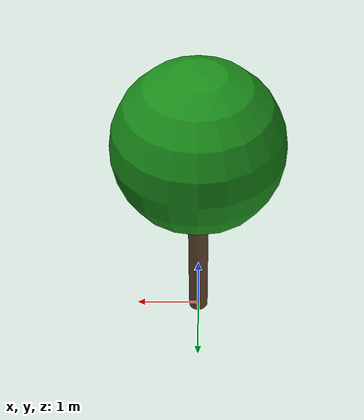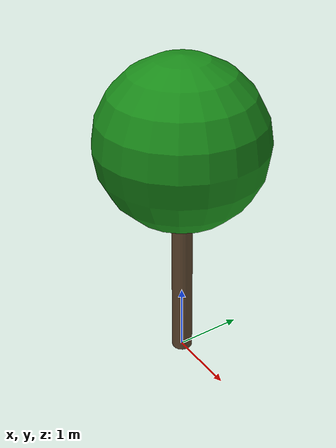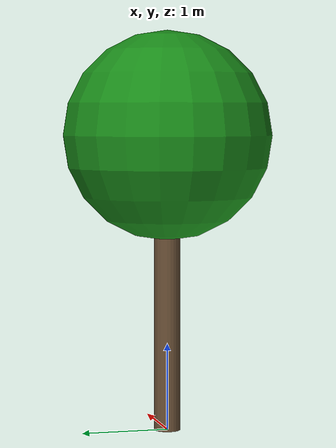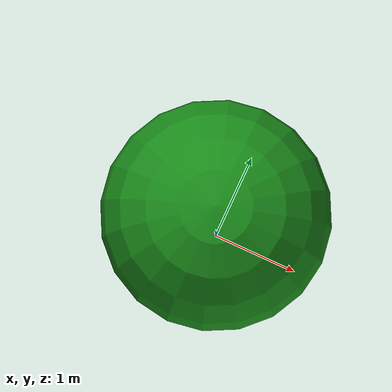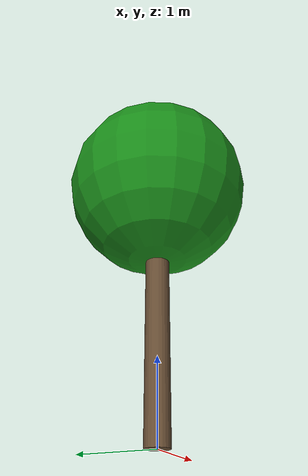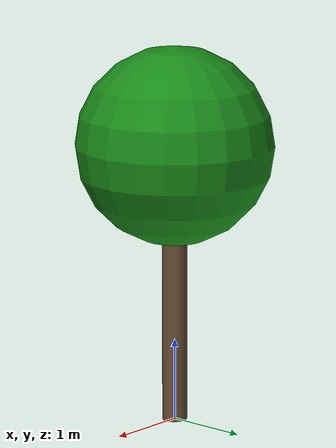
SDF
<?xml version="1.0" ?>
<sdf version="1.7">
  <model name="tree">
    <static>true</static>

    <link name="link">
      <!-- No collision (visual landmark only) -->
      <visual name="trunk">
        <pose>0 0 1.5 0 0 0</pose>
        <geometry>
          <cylinder><radius>0.15</radius><length>3.0</length></cylinder>
        </geometry>
        <material>
          <ambient>0.40 0.30 0.20 1</ambient>
          <diffuse>0.40 0.30 0.20 1</diffuse>
        </material>
      </visual>

      <visual name="canopy">
        <pose>0 0 3.4 0 0 0</pose>
        <geometry>
          <sphere><radius>1.2</radius></sphere>
        </geometry>
        <material>
          <ambient>0.10 0.55 0.10 1</ambient>
          <diffuse>0.10 0.55 0.10 1</diffuse>
        </material>
      </visual>
    </link>
  </model>
</sdf>
